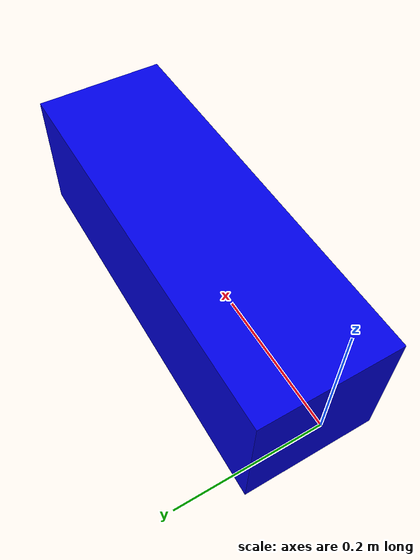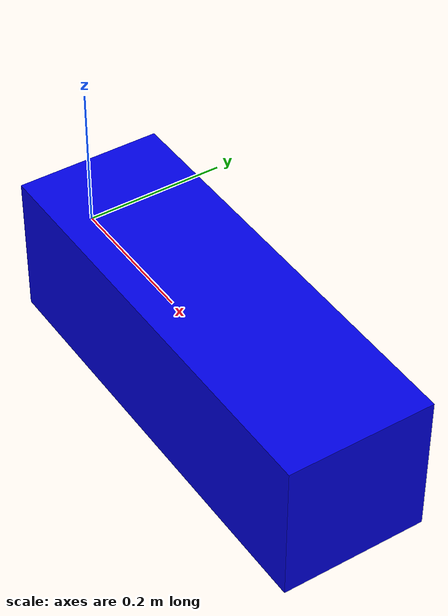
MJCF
<mujoco model="oneDof">
    <compiler angle="radian"/>

    <option timestep="0.001" integrator="RK4" gravity="0 0 -9.81">
      <flag energy="enable" contact="disable" />
    </option>

    <worldbody>
        <light diffuse=".5 .5 .5" pos="0 0 3" dir="0 0 -1"/>

		<body name="link1" pos="0.3 0 0">
            <inertial pos="0 0 0" euler="0 0 0" mass="2" diaginertia="0.003 0.005 0.005"/>
            <geom type="box" size=".3 .1 .1" rgba="0 0 .9 1"/>
             <joint name="J1" type="hinge" pos="-.3 0 0" axis="0 1 0" damping="1"/>
        </body>
    </worldbody>
	<actuator>
        <motor joint="J1" ctrlrange="-10 10" gear="10"/>
    </actuator>
</mujoco>
